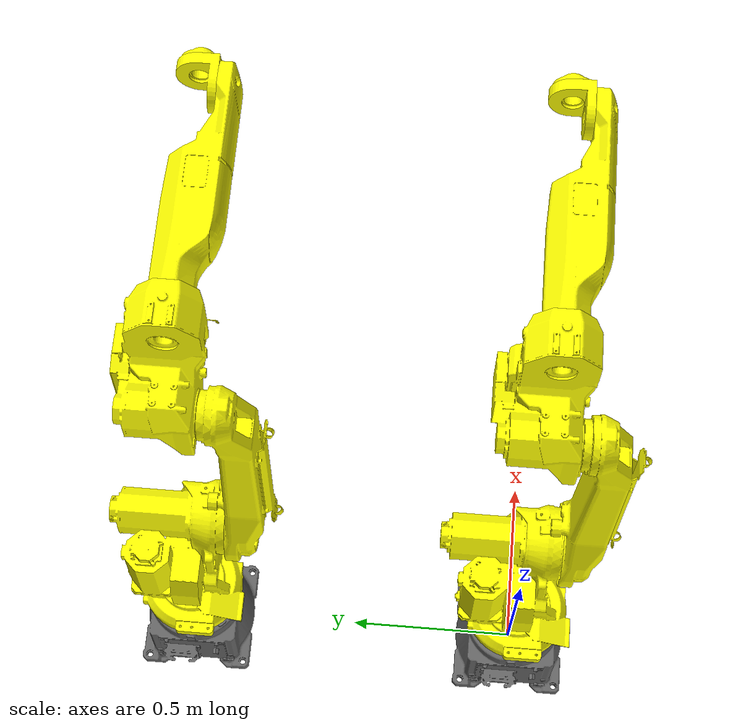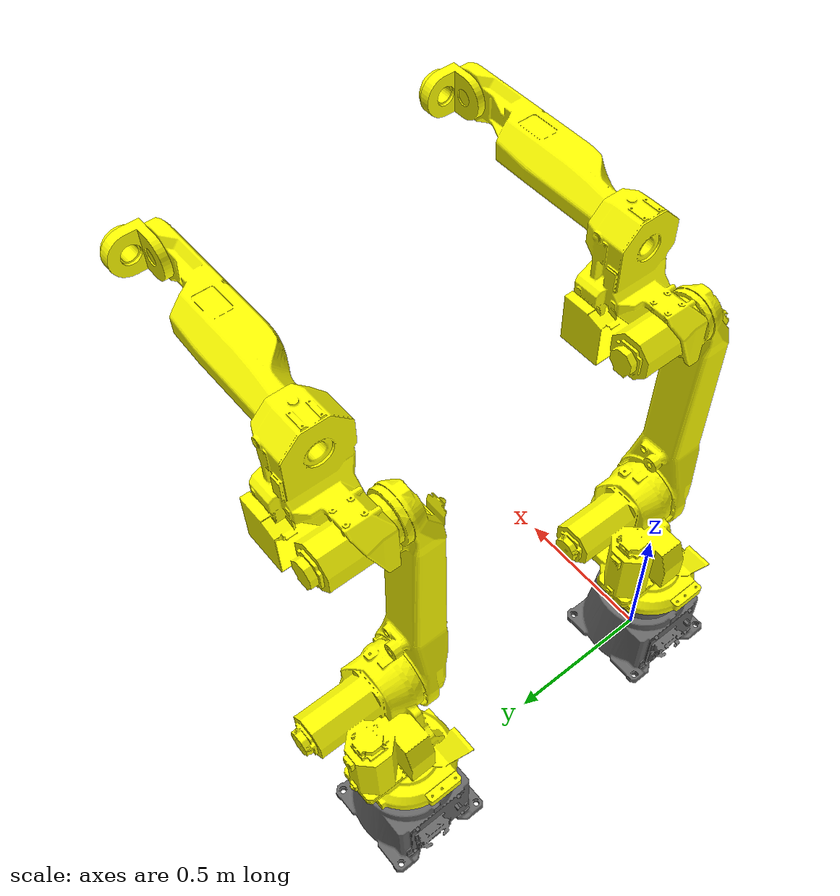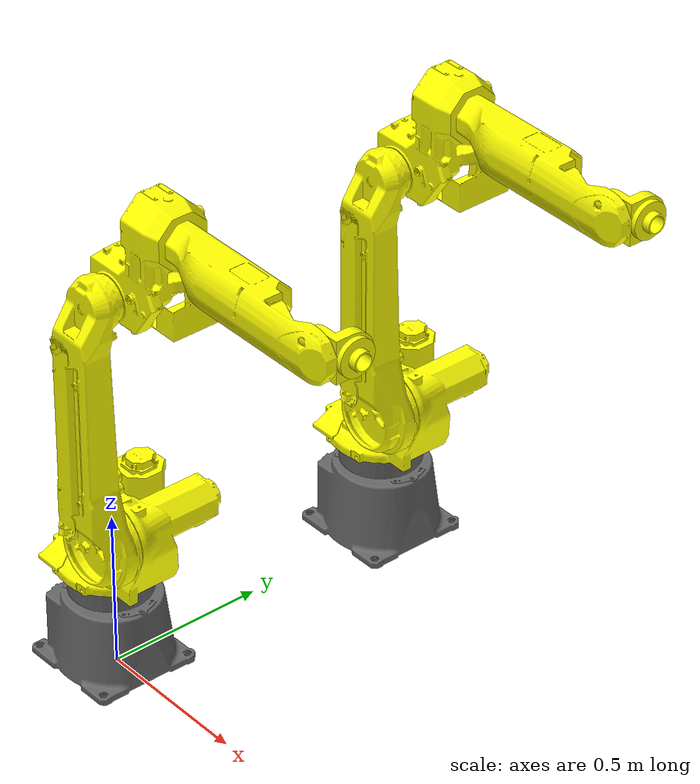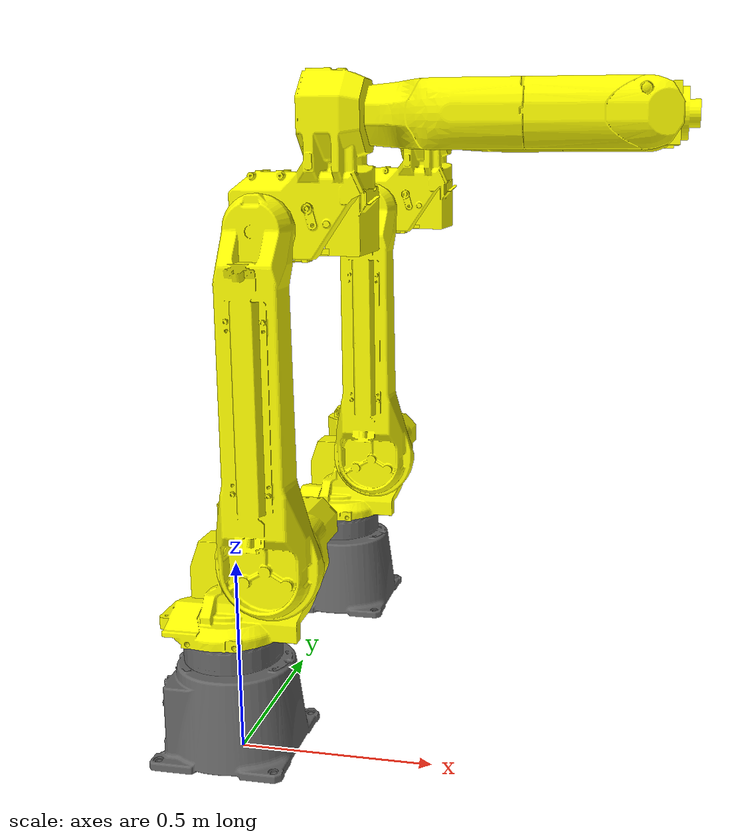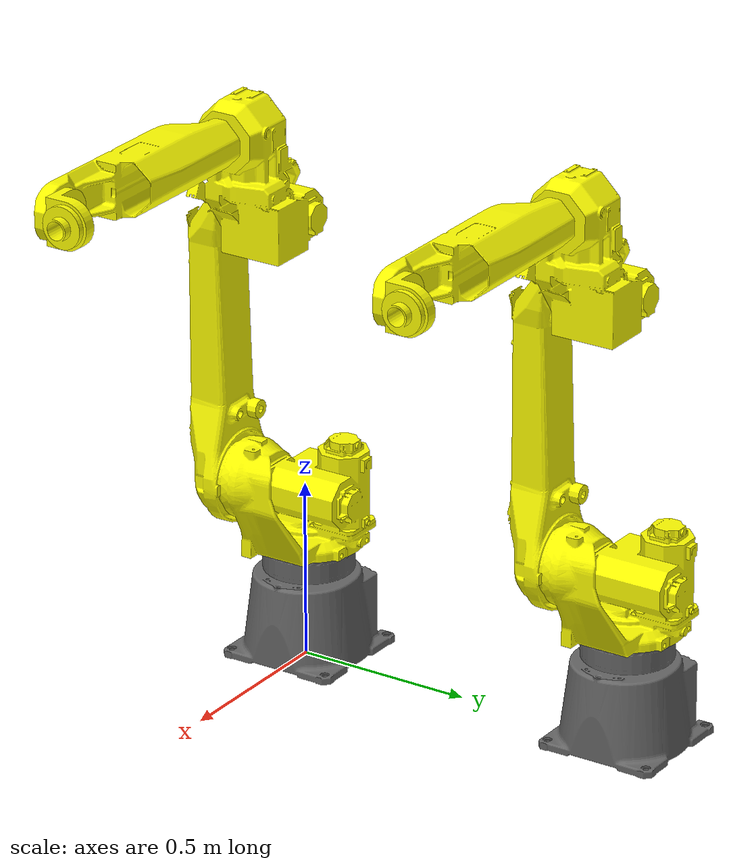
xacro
<?xml version="1.0"?>
<robot xmlns:xacro="http://wiki.ros.org/xacro"
       name="my_robot" >

  <xacro:arg name="transmission_hw_interface" default="hardware_interface/PositionJointInterface"/>

  <!-- common stuff -->
  <xacro:include filename="$(find my_robot_description)/urdf/common.gazebo.xacro" />

  <!-- ur5 -->
  <xacro:include filename="$(find my_robot_description)/urdf/robot.urdf.xacro" />

  <!-- arm 1 -->
  <xacro:my_robot prefix="pfx1_" joint_limited="false"
    transmission_hw_interface="$(arg transmission_hw_interface)"
  />

  <!-- arm 2 -->
  <xacro:my_robot prefix="pfx2_" joint_limited="false"
    transmission_hw_interface="$(arg transmission_hw_interface)"
  />

  <link name="v_base" />

  <joint name="v_base_joint1" type="fixed">
    <parent link="v_base" />
    <child link = "pfx1_base_link" />
    <origin xyz="0 0.0 0.0" rpy="-1.57 0.0 0.0" />
  </joint>

  <joint name="v_base_joint2" type="fixed">
    <parent link="v_base" />
    <child link = "pfx2_base_link" />
    <origin xyz="0 1.0 0.0" rpy="-1.57 0.0 0.0" />
  </joint>

</robot>

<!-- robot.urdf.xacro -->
<robot xmlns:xacro="http://wiki.ros.org/xacro">

<xacro:include filename="$(find my_robot_description)/urdf/materials.urdf.xacro" />

<xacro:macro name="my_robot" params="prefix joint_limited
    joint1_lower_limit:=${-pi}    joint1_upper_limit:=${pi}
    joint2_lower_limit:=${-pi}    joint2_upper_limit:=${pi}
    joint3_lower_limit:=${-pi}    joint3_upper_limit:=${pi}
    joint4_lower_limit:=${-pi}    joint4_upper_limit:=${pi}
    joint5_lower_limit:=${-pi}    joint5_upper_limit:=${pi}
    joint6_lower_limit:=${-pi}    joint6_upper_limit:=${pi}
    transmission_hw_interface:=hardware_interface/PositionJointInterface
    safety_limits:=false safety_pos_margin:=0.15
    safety_k_position:=20">

<link name="${prefix}base_link">
    <inertial>
      <origin xyz="-0.0126022026406354 0 0.148312857980725" rpy="0 0 0" />
      <mass value="23.6977592058706" />
      <inertia
        ixx="0.330068238702755" ixy="0.000570545544486689" ixz="0.00315757561410969"
        iyy="0.337174579427767" iyz="0.000284200763409556"
        izz="0.307530830169948" />
    </inertial>
    <visual>
      <origin xyz="0 0 0" rpy="0 0 0" />
      <geometry>
        <mesh filename="package://my_robot_description/meshes/base_link.STL" />
      </geometry>
      <material name="my_DarkGrey" />
    </visual>
    <collision>
      <origin xyz="0 0 0" rpy="0 0 0" />
      <geometry>
        <mesh filename="package://my_robot_description/meshes/base_link.STL" />
      </geometry>
    </collision>
  </link>
  <link name="${prefix}link1">
    <inertial>
      <origin
        xyz="0.0703224076533174 0.0253451607183423 0.152457861802122"
        rpy="0 0 0" />
      <mass
        value="18.7854045572151" />
      <inertia
        ixx="0.302121131667017" ixy="0.0207433494826265" ixz="-0.0660476898045915"
        iyy="0.312832259841531" iyz="-0.0175317871993816"
        izz="0.316118404649268" />
    </inertial>
    <visual>
      <origin xyz="0 0 0" rpy="0 0 0" />
      <geometry>
        <mesh filename="package://my_robot_description/meshes/link1.STL" />
      </geometry>
      <material name="my_Yellow"/>
    </visual>
    <collision>
      <origin xyz="0 0 0" rpy="0 0 0" />
      <geometry>
        <mesh filename="package://my_robot_description/meshes/link1.STL" />
      </geometry>
    </collision>
  </link>

  <joint name="${prefix}joint1" type="revolute">
    <origin
      xyz="-0.015 -0.33069 0"
      rpy="1.5708 0 0" />
    <parent link="${prefix}base_link" />
    <child link="${prefix}link1" />
    <axis xyz="0 0 1" />
    <xacro:unless value="${joint_limited}">
        <limit lower="${-2.0 * pi}" upper="${2.0 * pi}" effort="150.0" velocity="3.15"/>
        <xacro:if value="${safety_limits}">
          <safety_controller soft_lower_limit="${-2.0 * pi + safety_pos_margin}" soft_upper_limit="${2.0 * pi - safety_pos_margin}" k_position="${safety_k_position}" k_velocity="0.0"/>
        </xacro:if>
      </xacro:unless>
      <xacro:if value="${joint_limited}">
        <limit lower="${joint1_lower_limit}" upper="${joint1_upper_limit}" effort="150.0" velocity="3.15"/>
        <xacro:if value="${safety_limits}">
          <safety_controller soft_lower_limit="${joint1_lower_limit + safety_pos_margin}" soft_upper_limit="${joint1_upper_limit - safety_pos_margin}" k_position="${safety_k_position}" k_velocity="0.0"/>
        </xacro:if>
      </xacro:if>
      <dynamics damping="0.0" friction="0.0"/>
  </joint>

  <link name="${prefix}link2">
    <inertial>
      <origin
        xyz="0 -0.16471686280662 0.411840075538818"
        rpy="0 0 0" />
      <mass value="14.0790920818841" />
      <inertia
        ixx="0.886661245880346" ixy="0" ixz="0"
        iyy="0.902755559262587" iyz="-0.0104284784365054"
        izz="0.0482232016050229" />
    </inertial>
    <visual>
      <origin xyz="0 0 0" rpy="0 0 0" />
      <geometry>
        <mesh filename="package://my_robot_description/meshes/link2.STL" />
      </geometry>
      <material name="my_Yellow"/>
    </visual>
    <collision>
      <origin xyz="0 0 0" rpy="0 0 0" />
      <geometry>
        <mesh filename="package://my_robot_description/meshes/link2.STL" />
      </geometry>
    </collision>
  </link>

  <joint name="${prefix}joint2" type="revolute">
    <origin xyz="0.15 0 0.21745" rpy="0 0 0" />
    <parent link="${prefix}link1" />
    <child link="${prefix}link2" />
    <axis xyz="0 1 0" />
    <xacro:unless value="${joint_limited}">
        <limit lower="${-2.0 * pi}" upper="${2.0 * pi}" effort="150.0" velocity="3.15"/>
        <xacro:if value="${safety_limits}">
          <safety_controller soft_lower_limit="${-2.0 * pi + safety_pos_margin}" soft_upper_limit="${2.0 * pi - safety_pos_margin}" k_position="${safety_k_position}" k_velocity="0.0"/>
        </xacro:if>
      </xacro:unless>
      <xacro:if value="${joint_limited}">
        <limit lower="${joint2_lower_limit}" upper="${joint2_upper_limit}" effort="150.0" velocity="3.15"/>
        <xacro:if value="${safety_limits}">
          <safety_controller soft_lower_limit="${joint2_lower_limit + safety_pos_margin}" soft_upper_limit="${joint2_upper_limit - safety_pos_margin}" k_position="${safety_k_position}" k_velocity="0.0"/>
        </xacro:if>
      </xacro:if>
      <dynamics damping="0.0" friction="0.0"/>
  </joint>

  <link name="${prefix}link3">
    <inertial>
      <origin
        xyz="0.0943772050360831 0.00831993890865878 0.116811589774964"
        rpy="0 0 0" />
      <mass
        value="11.2852184423439" />
      <inertia
        ixx="0.185908674646294" ixy="-0.00260846713642638" ixz="-0.0635588295745308"
        iyy="0.223185444091577" iyz="0.00728563489713178"
        izz="0.112880183215889" />
    </inertial>
    <visual>
      <origin xyz="0 0 0" rpy="0 0 0" />
      <geometry>
        <mesh filename="package://my_robot_description/meshes/link3.STL" />
      </geometry>
      <material name="my_Yellow"/>
    </visual>
    <collision>
      <origin xyz="0 0 0" rpy="0 0 0" />
      <geometry>
        <mesh filename="package://my_robot_description/meshes/link3.STL" />
      </geometry>
    </collision>
  </link>

  <joint name="${prefix}joint3" type="revolute">
    <origin xyz="0 0 0.79" rpy="0 0 0" />
    <parent link="${prefix}link2" />
    <child link="${prefix}link3" />
    <axis xyz="0 1 0" />
    <xacro:unless value="${joint_limited}">
        <limit lower="${-2.0 * pi}" upper="${2.0 * pi}" effort="150.0" velocity="3.15"/>
        <xacro:if value="${safety_limits}">
          <safety_controller soft_lower_limit="${-2.0 * pi + safety_pos_margin}" soft_upper_limit="${2.0 * pi - safety_pos_margin}" k_position="${safety_k_position}" k_velocity="0.0"/>
        </xacro:if>
      </xacro:unless>
      <xacro:if value="${joint_limited}">
        <limit lower="${joint3_lower_limit}" upper="${joint3_upper_limit}" effort="150.0" velocity="3.15"/>
        <xacro:if value="${safety_limits}">
          <safety_controller soft_lower_limit="${joint3_lower_limit + safety_pos_margin}" soft_upper_limit="${joint3_upper_limit - safety_pos_margin}" k_position="${safety_k_position}" k_velocity="0.0"/>
        </xacro:if>
      </xacro:if>
      <dynamics damping="0.0" friction="0.0"/>
  </joint>

  <link name="${prefix}link4">
    <inertial>
      <origin
        xyz="0.30205027669831 -0.056496339086546 -3.5828372662694E-05"
        rpy="0 0 0" />
      <mass value="7.79297137146979" />
      <inertia
        ixx="0.0249309277234898" ixy="0.0283945238509783" ixz="5.90362297864023E-05"
        iyy="0.259730426200264" iyz="-1.29723833309108E-05"
        izz="0.258900627940369" />
    </inertial>
    <visual>
      <origin xyz="0 0 0" rpy="0 0 0" />
      <geometry>
        <mesh filename="package://my_robot_description/meshes/link4.STL" />
      </geometry>
      <material name="my_Yellow"/>
    </visual>
    <collision>
      <origin xyz="0 0 0" rpy="0 0 0" />
      <geometry>
        <mesh filename="package://my_robot_description/meshes/link4.STL" />
      </geometry>
    </collision>
  </link>

  <joint name="${prefix}joint4" type="revolute">
    <origin xyz="0.22809 0 0.25" rpy="0 0 0" />
    <parent link="${prefix}link3" />
    <child link="${prefix}link4" />
    <axis xyz="1 0 0" />
    <xacro:unless value="${joint_limited}">
        <limit lower="${-2.0 * pi}" upper="${2.0 * pi}" effort="150.0" velocity="3.15"/>
        <xacro:if value="${safety_limits}">
          <safety_controller soft_lower_limit="${-2.0 * pi + safety_pos_margin}" soft_upper_limit="${2.0 * pi - safety_pos_margin}" k_position="${safety_k_position}" k_velocity="0.0"/>
        </xacro:if>
      </xacro:unless>
      <xacro:if value="${joint_limited}">
        <limit lower="${joint4_lower_limit}" upper="${joint4_upper_limit}" effort="150.0" velocity="3.15"/>
        <xacro:if value="${safety_limits}">
          <safety_controller soft_lower_limit="${joint4_lower_limit + safety_pos_margin}" soft_upper_limit="${joint4_upper_limit - safety_pos_margin}" k_position="${safety_k_position}" k_velocity="0.0"/>
        </xacro:if>
      </xacro:if>
      <dynamics damping="0.0" friction="0.0"/>
  </joint>

  <link name="${prefix}link5">
    <inertial>
      <origin
        xyz="0.0286302873650151 -0.0178958882488403 -4.17443857259059E-14"
        rpy="0 0 0" />
      <mass
        value="0.598831893321024" />
      <inertia
        ixx="0.00160859630833623" ixy="-0.000377298390181619" ixz="4.62767450778639E-21"
        iyy="0.00167199859570175" iyz="-5.23748569666063E-20"
        izz="0.00152131174470428" />
    </inertial>
    <visual>
      <origin xyz="0 0 0" rpy="0 0 0" />
      <geometry>
        <mesh filename="package://my_robot_description/meshes/link5.STL" />
      </geometry>
      <material name="my_Yellow"/>
    </visual>
    <collision>
      <origin xyz="0 0 0" rpy="0 0 0" />
      <geometry>
        <mesh filename="package://my_robot_description/meshes/link5.STL" />
      </geometry>
    </collision>
  </link>

  <joint name="${prefix}joint5" type="continuous">
    <origin xyz="0.61291 0 0" rpy="0 0 0" />
    <parent link="${prefix}link4" />
    <child link="${prefix}link5" />
    <axis xyz="0 1 0" />
  </joint>

  <link name="${prefix}link6">
    <inertial>
      <origin
        xyz="0.032 0 0"
        rpy="0 0 0" />
      <mass value="0.17051308286624" />
      <inertia ixx="0.000277916848768315" ixy="0" ixz="0"
        iyy="0.000160289486643655" iyz="0"
        izz="0.000160289486643655" />
    </inertial>
    <visual>
      <origin xyz="0 0 0" rpy="0 0 0" />
      <geometry>
        <mesh filename="package://my_robot_description/meshes/link6.STL" />
      </geometry>
      <material name="my_Yellow"/>
    </visual>
    <collision>
      <origin xyz="0 0 0" rpy="0 0 0" />
      <geometry>
        <mesh filename="package://my_robot_description/meshes/link6.STL" />
      </geometry>
    </collision>
  </link>

  <joint name="${prefix}joint6" type="continuous">
    <origin xyz="0.0455 0.0005 0" rpy="0 0 0" />
    <parent link="${prefix}link5" />
    <child link="${prefix}link6" />
    <axis xyz="1 0 0" />
  </joint>

  <xacro:include filename="$(find my_robot_description)/urdf/robot.transmission.xacro" />
  <xacro:include filename="$(find my_robot_description)/urdf/robot.gazebo.xacro" />

  <xacro:robot_arm_transmission  prefix="${prefix}" hw_interface="${transmission_hw_interface}" />
  <xacro:robot_arm_gazebo  prefix="${prefix}" />

  </xacro:macro>
</robot>

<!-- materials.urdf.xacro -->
<robot>

  <!-- Put all the color definitions in a separate file -->
  <material name="DarkBlack">
    <color rgba="0.0 0.0 0.0 1.0" />
  </material>

  <material name="Black">
    <color rgba="0.2 0.2 0.2 1.0" />
  </material>

   <material name="TransparentBlack">
    <color rgba="0.2 0.2 0.2 0.8" />
  </material>

  <material name="Orange">
    <color rgba="1.0 0.55 0.0 1.0" />
  </material>

  <material name="Grey">
    <color rgba="0.7 0.7 0.7 1.0" />
  </material>

  <material name="DarkGrey">
    <color rgba="0.3 0.3 0.3 1.0" />
  </material>

  <material name="Red">
    <color rgba="0.8 0.0 0.0 1.0" />
  </material>

  <material name="White">
    <color rgba="1.0 1.0 1.0 1.0" />
  </material>

  <material name="OffWhite">
    <color rgba="0.8 0.8 0.8 1.0" />
  </material>

  <material name="Blue">
    <color rgba="0.0 0.0 0.8 1.0" />
  </material>

  <material name="Green">
    <color rgba="0.0 0.8 0.0 1.0" />
  </material>

  <material name="TransparentGreen">
    <color rgba="0.0 0.8 0.0 0.5" />
  </material>
<!-- my robot material -->

  <material name="my_DarkGrey">
    <color rgba="0.4 0.4 0.4 1" />
  </material>

  <material name="my_Yellow">
    <color rgba="1 1 0 1" />
  </material>

</robot>
